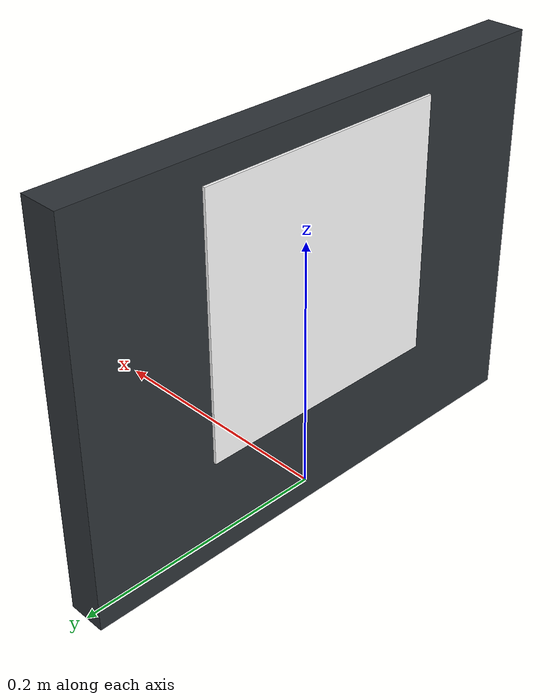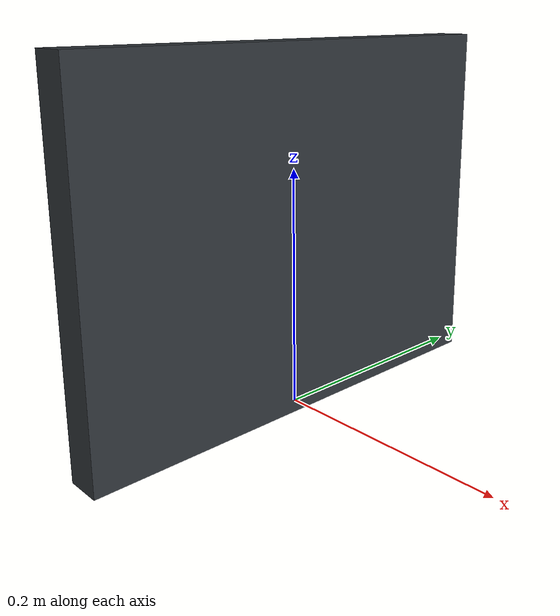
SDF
<?xml version="1.0"?>
<sdf version="1.9">
  <model name="apriltag_dock">
    <static>true</static>
    <link name="dock">
      <collision name="plate_collision">
        <pose>0 0 0.15 0 0 0</pose>
        <geometry>
          <box>
            <size>0.03 0.40 0.30</size>
          </box>
        </geometry>
      </collision>
      <visual name="plate_visual">
        <pose>0 0 0.15 0 0 0</pose>
        <geometry>
          <box>
            <size>0.03 0.40 0.30</size>
          </box>
        </geometry>
        <material>
          <ambient>0.12 0.14 0.16 1</ambient>
          <diffuse>0.18 0.20 0.22 1</diffuse>
        </material>
      </visual>
      <visual name="tag_visual">
        <pose>-0.016 0 0.18 0 0 0</pose>
        <geometry>
          <box>
            <size>0.002 0.20 0.20</size>
          </box>
        </geometry>
        <material>
          <ambient>1 1 1 1</ambient>
          <diffuse>1 1 1 1</diffuse>
          <pbr>
            <metal>
              <albedo_map>model://apriltag_dock/materials/textures/tag36_11_00000.png</albedo_map>
              <metalness>0.0</metalness>
              <roughness>1.0</roughness>
            </metal>
          </pbr>
        </material>
      </visual>
    </link>
  </model>
</sdf>
